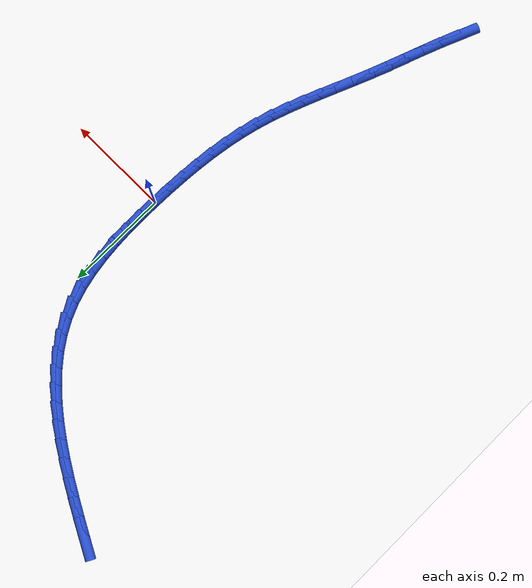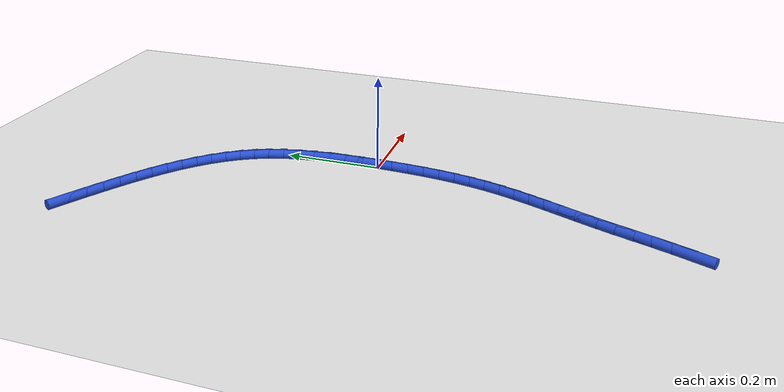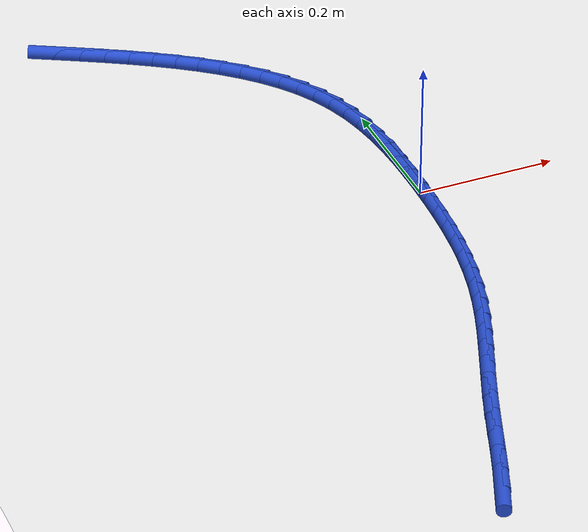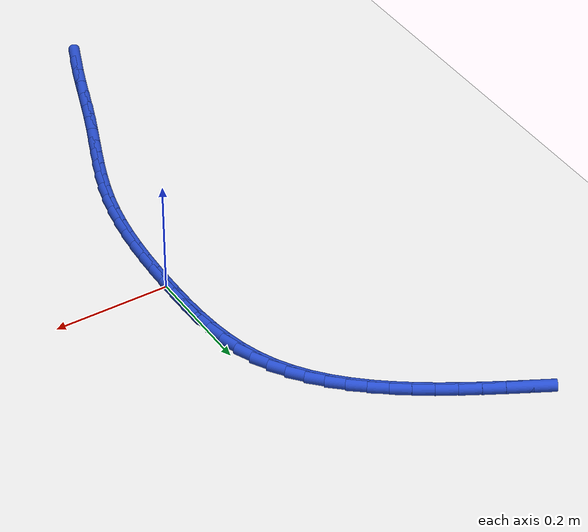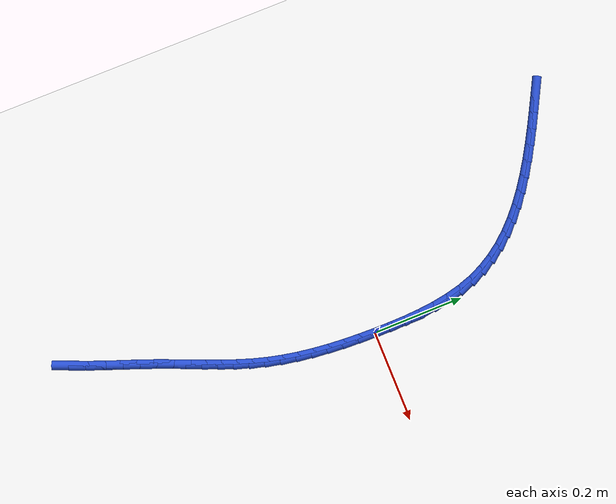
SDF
<sdf version="1.6">
 <world name="default">
  <model name="ground_plane">
   <static>1</static>
   <link name="link">
    <collision name="collision">
     <geometry><plane><normal>0 0 1</normal><size>100 100</size></plane></geometry>
     <surface><friction><ode><mu>100</mu><mu2>50</mu2></ode></friction></surface>
    </collision>
    <visual name="visual">
     <cast_shadows>0</cast_shadows>
     <geometry><plane><normal>0 0 1</normal><size>100 100</size></plane></geometry>
     <material>
      <script><uri>file://media/materials/scripts/gazebo.material</uri><name>Gazebo/WhiteGlow</name></script>
     </material>
    </visual>
   </link>
  </model>
  <model name="line">
   <link name="link_0">
    <pose>1.2793585635328952e-17 6.938893903907228e-18 0.01 0 1.57 1.560720310183343</pose>
    <collision name="collision">
     <geometry><cylinder><radius>0.01</radius><length>0.08</length></cylinder></geometry>
    </collision>
    <visual name="visual">
     <material>
      <script><name>Gazebo/Blue</name><uri>file://media/materials/scripts/gazebo.material</uri></script>
     </material>
     <geometry><cylinder><radius>0.01</radius><length>0.08</length></cylinder></geometry>
    </visual>
   </link>
   <link name="link_1">
    <pose>0.0003561060510922249 0.03534075154741206 0.01 0 1.57 -1.5546245115065553</pose>
    <collision name="collision">
     <geometry><cylinder><radius>0.01</radius><length>0.08</length></cylinder></geometry>
    </collision>
    <visual name="visual">
     <material>
      <script><name>Gazebo/Blue</name><uri>file://media/materials/scripts/gazebo.material</uri></script>
     </material>
     <geometry><cylinder><radius>0.01</radius><length>0.08</length></cylinder></geometry>
    </visual>
   </link>
   <link name="link_2">
    <pose>-0.0002157422022764675 0.07069846439136131 0.01 0 1.57 -1.5190362888300548</pose>
    <collision name="collision">
     <geometry><cylinder><radius>0.01</radius><length>0.08</length></cylinder></geometry>
    </collision>
    <visual name="visual">
     <material>
      <script><name>Gazebo/Blue</name><uri>file://media/materials/scripts/gazebo.material</uri></script>
     </material>
     <geometry><cylinder><radius>0.01</radius><length>0.08</length></cylinder></geometry>
    </visual>
   </link>
   <link name="link_3">
    <pose>-0.0020321122549496508 0.10575925171513278 0.01 0 1.57 -1.473069108385165</pose>
    <collision name="collision">
     <geometry><cylinder><radius>0.01</radius><length>0.08</length></cylinder></geometry>
    </collision>
    <visual name="visual">
     <material>
      <script><name>Gazebo/Blue</name><uri>file://media/materials/scripts/gazebo.material</uri></script>
     </material>
     <geometry><cylinder><radius>0.01</radius><length>0.08</length></cylinder></geometry>
    </visual>
   </link>
   <link name="link_4">
    <pose>-0.005409571601770914 0.14020922670201147 0.01 0 1.57 -1.4153106896293728</pose>
    <collision name="collision">
     <geometry><cylinder><radius>0.01</radius><length>0.08</length></cylinder></geometry>
    </collision>
    <visual name="visual">
     <material>
      <script><name>Gazebo/Blue</name><uri>file://media/materials/scripts/gazebo.material</uri></script>
     </material>
     <geometry><cylinder><radius>0.01</radius><length>0.08</length></cylinder></geometry>
    </visual>
   </link>
   <link name="link_5">
    <pose>-0.010664687737583847 0.17373450253528236 0.01 0 1.57 -1.3440396528830696</pose>
    <collision name="collision">
     <geometry><cylinder><radius>0.01</radius><length>0.08</length></cylinder></geometry>
    </collision>
    <visual name="visual">
     <material>
      <script><name>Gazebo/Blue</name><uri>file://media/materials/scripts/gazebo.material</uri></script>
     </material>
     <geometry><cylinder><radius>0.01</radius><length>0.08</length></cylinder></geometry>
    </visual>
   </link>
   <link name="link_6">
    <pose>-0.018114028157232044 0.20602119239823052 0.01 0 1.57 -1.2574030290645206</pose>
    <collision name="collision">
     <geometry><cylinder><radius>0.01</radius><length>0.08</length></cylinder></geometry>
    </collision>
    <visual name="visual">
     <material>
      <script><name>Gazebo/Blue</name><uri>file://media/materials/scripts/gazebo.material</uri></script>
     </material>
     <geometry><cylinder><radius>0.01</radius><length>0.08</length></cylinder></geometry>
    </visual>
   </link>
   <link name="link_7">
    <pose>-0.028074160355559097 0.23675540947414092 0.01 0 1.57 -1.1564193268851086</pose>
    <collision name="collision">
     <geometry><cylinder><radius>0.01</radius><length>0.08</length></cylinder></geometry>
    </collision>
    <visual name="visual">
     <material>
      <script><name>Gazebo/Blue</name><uri>file://media/materials/scripts/gazebo.material</uri></script>
     </material>
     <geometry><cylinder><radius>0.01</radius><length>0.08</length></cylinder></geometry>
    </visual>
   </link>
   <link name="link_8">
    <pose>-0.04079735476901256 0.2656819510736706 0.01 0 1.57 -1.0549637227854383</pose>
    <collision name="collision">
     <geometry><cylinder><radius>0.01</radius><length>0.08</length></cylinder></geometry>
    </collision>
    <visual name="visual">
     <material>
      <script><name>Gazebo/Blue</name><uri>file://media/materials/scripts/gazebo.material</uri></script>
     </material>
     <geometry><cylinder><radius>0.01</radius><length>0.08</length></cylinder></geometry>
    </visual>
   </link>
   <link name="link_9">
    <pose>-0.05620263337087797 0.29284977142766355 0.01 0 1.57 -0.9598250668806347</pose>
    <collision name="collision">
     <geometry><cylinder><radius>0.01</radius><length>0.08</length></cylinder></geometry>
    </collision>
    <visual name="visual">
     <material>
      <script><name>Gazebo/Blue</name><uri>file://media/materials/scripts/gazebo.material</uri></script>
     </material>
     <geometry><cylinder><radius>0.01</radius><length>0.08</length></cylinder></geometry>
    </visual>
   </link>
   <link name="link_10">
    <pose>-0.07410138125429766 0.31840606528592075 0.01 0 1.57 -0.8729581789027131</pose>
    <collision name="collision">
     <geometry><cylinder><radius>0.01</radius><length>0.08</length></cylinder></geometry>
    </collision>
    <visual name="visual">
     <material>
      <script><name>Gazebo/Blue</name><uri>file://media/materials/scripts/gazebo.material</uri></script>
     </material>
     <geometry><cylinder><radius>0.01</radius><length>0.08</length></cylinder></geometry>
    </visual>
   </link>
   <link name="link_11">
    <pose>-0.09430492996516908 0.3424980762709823 0.01 0 1.57 -0.7954941537757592</pose>
    <collision name="collision">
     <geometry><cylinder><radius>0.01</radius><length>0.08</length></cylinder></geometry>
    </collision>
    <visual name="visual">
     <material>
      <script><name>Gazebo/Blue</name><uri>file://media/materials/scripts/gazebo.material</uri></script>
     </material>
     <geometry><cylinder><radius>0.01</radius><length>0.08</length></cylinder></geometry>
    </visual>
   </link>
   <link name="link_12">
    <pose>-0.1166246110493896 0.36527304800538823 0.01 0 1.57 -0.7278427136286466</pose>
    <collision name="collision">
     <geometry><cylinder><radius>0.01</radius><length>0.08</length></cylinder></geometry>
    </collision>
    <visual name="visual">
     <material>
      <script><name>Gazebo/Blue</name><uri>file://media/materials/scripts/gazebo.material</uri></script>
     </material>
     <geometry><cylinder><radius>0.01</radius><length>0.08</length></cylinder></geometry>
    </visual>
   </link>
   <link name="link_13">
    <pose>-0.14087175605285673 0.38687822411167855 0.01 0 1.57 -0.66988542396125</pose>
    <collision name="collision">
     <geometry><cylinder><radius>0.01</radius><length>0.08</length></cylinder></geometry>
    </collision>
    <visual name="visual">
     <material>
      <script><name>Gazebo/Blue</name><uri>file://media/materials/scripts/gazebo.material</uri></script>
     </material>
     <geometry><cylinder><radius>0.01</radius><length>0.08</length></cylinder></geometry>
    </visual>
   </link>
   <link name="link_14">
    <pose>-0.16685769652146776 0.4074608482123933 0.01 0 1.57 -0.6211793957976091</pose>
    <collision name="collision">
     <geometry><cylinder><radius>0.01</radius><length>0.08</length></cylinder></geometry>
    </collision>
    <visual name="visual">
     <material>
      <script><name>Gazebo/Blue</name><uri>file://media/materials/scripts/gazebo.material</uri></script>
     </material>
     <geometry><cylinder><radius>0.01</radius><length>0.08</length></cylinder></geometry>
    </visual>
   </link>
   <link name="link_15">
    <pose>-0.19439376400112018 0.4271681639300725 0.01 0 1.57 -0.5811251205386989</pose>
    <collision name="collision">
     <geometry><cylinder><radius>0.01</radius><length>0.08</length></cylinder></geometry>
    </collision>
    <visual name="visual">
     <material>
      <script><name>Gazebo/Blue</name><uri>file://media/materials/scripts/gazebo.material</uri></script>
     </material>
     <geometry><cylinder><radius>0.01</radius><length>0.08</length></cylinder></geometry>
    </visual>
   </link>
   <link name="link_16">
    <pose>-0.22329129003771145 0.4461474148872562 0.01 0 1.57 -0.5490849501158122</pose>
    <collision name="collision">
     <geometry><cylinder><radius>0.01</radius><length>0.08</length></cylinder></geometry>
    </collision>
    <visual name="visual">
     <material>
      <script><name>Gazebo/Blue</name><uri>file://media/materials/scripts/gazebo.material</uri></script>
     </material>
     <geometry><cylinder><radius>0.01</radius><length>0.08</length></cylinder></geometry>
    </visual>
   </link>
   <link name="link_17">
    <pose>-0.253361606177139 0.46454584470648447 0.01 0 1.57 -0.5244572676597984</pose>
    <collision name="collision">
     <geometry><cylinder><radius>0.01</radius><length>0.08</length></cylinder></geometry>
    </collision>
    <visual name="visual">
     <material>
      <script><name>Gazebo/Blue</name><uri>file://media/materials/scripts/gazebo.material</uri></script>
     </material>
     <geometry><cylinder><radius>0.01</radius><length>0.08</length></cylinder></geometry>
    </visual>
   </link>
   <link name="link_18">
    <pose>-0.28441604396530007 0.48251069701029725 0.01 0 1.57 -0.5067177754159372</pose>
    <collision name="collision">
     <geometry><cylinder><radius>0.01</radius><length>0.08</length></cylinder></geometry>
    </collision>
    <visual name="visual">
     <material>
      <script><name>Gazebo/Blue</name><uri>file://media/materials/scripts/gazebo.material</uri></script>
     </material>
     <geometry><cylinder><radius>0.01</radius><length>0.08</length></cylinder></geometry>
    </visual>
   </link>
   <link name="link_19">
    <pose>-0.31626593494809224 0.5001892154212346 0.01 0 1.57 -0.49543910347332776</pose>
    <collision name="collision">
     <geometry><cylinder><radius>0.01</radius><length>0.08</length></cylinder></geometry>
    </collision>
    <visual name="visual">
     <material>
      <script><name>Gazebo/Blue</name><uri>file://media/materials/scripts/gazebo.material</uri></script>
     </material>
     <geometry><cylinder><radius>0.01</radius><length>0.08</length></cylinder></geometry>
    </visual>
   </link>
   <link name="link_20">
    <pose>-0.3487226106714128 0.5177286435618366 0.01 0 1.57 -0.4902973190634133</pose>
    <collision name="collision">
     <geometry><cylinder><radius>0.01</radius><length>0.08</length></cylinder></geometry>
    </collision>
    <visual name="visual">
     <material>
      <script><name>Gazebo/Blue</name><uri>file://media/materials/scripts/gazebo.material</uri></script>
     </material>
     <geometry><cylinder><radius>0.01</radius><length>0.08</length></cylinder></geometry>
    </visual>
   </link>
   <link name="link_241">
    <pose>-0.17741435255780102 -0.6287343821351985 0.01 0 1.57 1.1787100086905404</pose>
    <collision name="collision">
     <geometry><cylinder><radius>0.01</radius><length>0.08</length></cylinder></geometry>
    </collision>
    <visual name="visual">
     <material>
      <script><name>Gazebo/Blue</name><uri>file://media/materials/scripts/gazebo.material</uri></script>
     </material>
     <geometry><cylinder><radius>0.01</radius><length>0.08</length></cylinder></geometry>
    </visual>
   </link>
   <link name="link_242">
    <pose>-0.163614553840655 -0.5953608940841754 0.01 0 1.57 1.2036128514414295</pose>
    <collision name="collision">
     <geometry><cylinder><radius>0.01</radius><length>0.08</length></cylinder></geometry>
    </collision>
    <visual name="visual">
     <material>
      <script><name>Gazebo/Blue</name><uri>file://media/materials/scripts/gazebo.material</uri></script>
     </material>
     <geometry><cylinder><radius>0.01</radius><length>0.08</length></cylinder></geometry>
    </visual>
   </link>
   <link name="link_243">
    <pose>-0.15049977579911777 -0.5612634523771571 0.01 0 1.57 1.2163368727497765</pose>
    <collision name="collision">
     <geometry><cylinder><radius>0.01</radius><length>0.08</length></cylinder></geometry>
    </collision>
    <visual name="visual">
     <material>
      <script><name>Gazebo/Blue</name><uri>file://media/materials/scripts/gazebo.material</uri></script>
     </material>
     <geometry><cylinder><radius>0.01</radius><length>0.08</length></cylinder></geometry>
    </visual>
   </link>
   <link name="link_244">
    <pose>-0.13777442498876866 -0.5268790157116257 0.01 0 1.57 1.2173220781774796</pose>
    <collision name="collision">
     <geometry><cylinder><radius>0.01</radius><length>0.08</length></cylinder></geometry>
    </collision>
    <visual name="visual">
     <material>
      <script><name>Gazebo/Blue</name><uri>file://media/materials/scripts/gazebo.material</uri></script>
     </material>
     <geometry><cylinder><radius>0.01</radius><length>0.08</length></cylinder></geometry>
    </visual>
   </link>
   <link name="link_245">
    <pose>-0.1251429079651865 -0.4926445427850613 0.01 0 1.57 1.2064423774184445</pose>
    <collision name="collision">
     <geometry><cylinder><radius>0.01</radius><length>0.08</length></cylinder></geometry>
    </collision>
    <visual name="visual">
     <material>
      <script><name>Gazebo/Blue</name><uri>file://media/materials/scripts/gazebo.material</uri></script>
     </material>
     <geometry><cylinder><radius>0.01</radius><length>0.08</length></cylinder></geometry>
    </visual>
   </link>
   <link name="link_246">
    <pose>-0.11231013211036561 -0.45899644008838525 0.01 0 1.57 1.188884265512418</pose>
    <collision name="collision">
     <geometry><cylinder><radius>0.01</radius><length>0.08</length></cylinder></geometry>
    </collision>
    <visual name="visual">
     <material>
      <script><name>Gazebo/Blue</name><uri>file://media/materials/scripts/gazebo.material</uri></script>
     </material>
     <geometry><cylinder><radius>0.01</radius><length>0.08</length></cylinder></geometry>
    </visual>
   </link>
   <link name="link_247">
    <pose>-0.09913748026745511 -0.4261985857191453 0.01 0 1.57 1.178710485352953</pose>
    <collision name="collision">
     <geometry><cylinder><radius>0.01</radius><length>0.08</length></cylinder></geometry>
    </collision>
    <visual name="visual">
     <material>
      <script><name>Gazebo/Blue</name><uri>file://media/materials/scripts/gazebo.material</uri></script>
     </material>
     <geometry><cylinder><radius>0.01</radius><length>0.08</length></cylinder></geometry>
    </visual>
   </link>
   <link name="link_248">
    <pose>-0.08586415427084954 -0.39409827805649644 0.01 0 1.57 1.1785647573649103</pose>
    <collision name="collision">
     <geometry><cylinder><radius>0.01</radius><length>0.08</length></cylinder></geometry>
    </collision>
    <visual name="visual">
     <material>
      <script><name>Gazebo/Blue</name><uri>file://media/materials/scripts/gazebo.material</uri></script>
     </material>
     <geometry><cylinder><radius>0.01</radius><length>0.08</length></cylinder></geometry>
    </visual>
   </link>
   <link name="link_249">
    <pose>-0.07278524351337122 -0.3624811943755959 0.01 0 1.57 1.188912058297282</pose>
    <collision name="collision">
     <geometry><cylinder><radius>0.01</radius><length>0.08</length></cylinder></geometry>
    </collision>
    <visual name="visual">
     <material>
      <script><name>Gazebo/Blue</name><uri>file://media/materials/scripts/gazebo.material</uri></script>
     </material>
     <geometry><cylinder><radius>0.01</radius><length>0.08</length></cylinder></geometry>
    </visual>
   </link>
   <link name="link_250">
    <pose>-0.060195837387842524 -0.33113301195160144 0.01 0 1.57 1.2100740956142633</pose>
    <collision name="collision">
     <geometry><cylinder><radius>0.01</radius><length>0.08</length></cylinder></geometry>
    </collision>
    <visual name="visual">
     <material>
      <script><name>Gazebo/Blue</name><uri>file://media/materials/scripts/gazebo.material</uri></script>
     </material>
     <geometry><cylinder><radius>0.01</radius><length>0.08</length></cylinder></geometry>
    </visual>
   </link>
   <link name="link_251">
    <pose>-0.04839102528708583 -0.2998394080596706 0.01 0 1.57 1.2421749020141337</pose>
    <collision name="collision">
     <geometry><cylinder><radius>0.01</radius><length>0.08</length></cylinder></geometry>
    </collision>
    <visual name="visual">
     <material>
      <script><name>Gazebo/Blue</name><uri>file://media/materials/scripts/gazebo.material</uri></script>
     </material>
     <geometry><cylinder><radius>0.01</radius><length>0.08</length></cylinder></geometry>
    </visual>
   </link>
   <link name="link_252">
    <pose>-0.037665896603923214 -0.2683860599749599 0.01 0 1.57 1.2850512715292484</pose>
    <collision name="collision">
     <geometry><cylinder><radius>0.01</radius><length>0.08</length></cylinder></geometry>
    </collision>
    <visual name="visual">
     <material>
      <script><name>Gazebo/Blue</name><uri>file://media/materials/scripts/gazebo.material</uri></script>
     </material>
     <geometry><cylinder><radius>0.01</radius><length>0.08</length></cylinder></geometry>
    </visual>
   </link>
   <link name="link_253">
    <pose>-0.028315494004249205 -0.23655867126391045 0.01 0 1.57 1.3350330923334777</pose>
    <collision name="collision">
     <geometry><cylinder><radius>0.01</radius><length>0.08</length></cylinder></geometry>
    </collision>
    <visual name="visual">
     <material>
      <script><name>Gazebo/Blue</name><uri>file://media/materials/scripts/gazebo.material</uri></script>
     </material>
     <geometry><cylinder><radius>0.01</radius><length>0.08</length></cylinder></geometry>
    </visual>
   </link>
   <link name="link_254">
    <pose>-0.020540932991116423 -0.2041957943656162 0.01 0 1.57 1.3819158927481778</pose>
    <collision name="collision">
     <geometry><cylinder><radius>0.01</radius><length>0.08</length></cylinder></geometry>
    </collision>
    <visual name="visual">
     <material>
      <script><name>Gazebo/Blue</name><uri>file://media/materials/scripts/gazebo.material</uri></script>
     </material>
     <geometry><cylinder><radius>0.01</radius><length>0.08</length></cylinder></geometry>
    </visual>
   </link>
   <link name="link_255">
    <pose>-0.014252526485560297 -0.17129960412785733 0.01 0 1.57 1.4237025384828275</pose>
    <collision name="collision">
     <geometry><cylinder><radius>0.01</radius><length>0.08</length></cylinder></geometry>
    </collision>
    <visual name="visual">
     <material>
      <script><name>Gazebo/Blue</name><uri>file://media/materials/scripts/gazebo.material</uri></script>
     </material>
     <geometry><cylinder><radius>0.01</radius><length>0.08</length></cylinder></geometry>
    </visual>
   </link>
   <link name="link_256">
    <pose>-0.009304479871254275 -0.13790384475500272 0.01 0 1.57 1.4603992360388331</pose>
    <collision name="collision">
     <geometry><cylinder><radius>0.01</radius><length>0.08</length></cylinder></geometry>
    </collision>
    <visual name="visual">
     <material>
      <script><name>Gazebo/Blue</name><uri>file://media/materials/scripts/gazebo.material</uri></script>
     </material>
     <geometry><cylinder><radius>0.01</radius><length>0.08</length></cylinder></geometry>
    </visual>
   </link>
   <link name="link_257">
    <pose>-0.005550998531871791 -0.10404226045142094 0.01 0 1.57 1.4920901445660926</pose>
    <collision name="collision">
     <geometry><cylinder><radius>0.01</radius><length>0.08</length></cylinder></geometry>
    </collision>
    <visual name="visual">
     <material>
      <script><name>Gazebo/Blue</name><uri>file://media/materials/scripts/gazebo.material</uri></script>
     </material>
     <geometry><cylinder><radius>0.01</radius><length>0.08</length></cylinder></geometry>
    </visual>
   </link>
   <link name="link_258">
    <pose>-0.0028462878510862907 -0.0697485954214808 0.01 0 1.57 1.5189077859648845</pose>
    <collision name="collision">
     <geometry><cylinder><radius>0.01</radius><length>0.08</length></cylinder></geometry>
    </collision>
    <visual name="visual">
     <material>
      <script><name>Gazebo/Blue</name><uri>file://media/materials/scripts/gazebo.material</uri></script>
     </material>
     <geometry><cylinder><radius>0.01</radius><length>0.08</length></cylinder></geometry>
    </visual>
   </link>
   <link name="link_259">
    <pose>-0.0010445532125712116 -0.03505659386955097 0.01 0 1.57 1.541008941909949</pose>
    <collision name="collision">
     <geometry><cylinder><radius>0.01</radius><length>0.08</length></cylinder></geometry>
    </collision>
    <visual name="visual">
     <material>
      <script><name>Gazebo/Blue</name><uri>file://media/materials/scripts/gazebo.material</uri></script>
     </material>
     <geometry><cylinder><radius>0.01</radius><length>0.08</length></cylinder></geometry>
    </visual>
   </link>
   <link name="link_260">
    <pose>2.168404344971009e-19 -2.2898349882893854e-16 0.01 0 1.57 1.5585562566955398</pose>
    <collision name="collision">
     <geometry><cylinder><radius>0.01</radius><length>0.08</length></cylinder></geometry>
    </collision>
    <visual name="visual">
     <material>
      <script><name>Gazebo/Blue</name><uri>file://media/materials/scripts/gazebo.material</uri></script>
     </material>
     <geometry><cylinder><radius>0.01</radius><length>0.08</length></cylinder></geometry>
    </visual>
   </link>
   <link name="link_261">
    <pose>0.00043316640295390616 0.03538744198280272 0.01 0 1.57 -1.569887648245066</pose>
    <collision name="collision">
     <geometry><cylinder><radius>0.01</radius><length>0.08</length></cylinder></geometry>
    </collision>
    <visual name="visual">
     <material>
      <script><name>Gazebo/Blue</name><uri>file://media/materials/scripts/gazebo.material</uri></script>
     </material>
     <geometry><cylinder><radius>0.01</radius><length>0.08</length></cylinder></geometry>
    </visual>
   </link>
   <link name="link_262">
    <pose>0.00040074061261706224 0.07107198787448914 0.01 0 1.57 1.565157869537909</pose>
    <collision name="collision">
     <geometry><cylinder><radius>0.01</radius><length>0.08</length></cylinder></geometry>
    </collision>
    <visual name="visual">
     <material>
      <script><name>Gazebo/Blue</name><uri>file://media/materials/scripts/gazebo.material</uri></script>
     </material>
     <geometry><cylinder><radius>0.01</radius><length>0.08</length></cylinder></geometry>
    </visual>
   </link>
  </model>
 </world>
</sdf>
